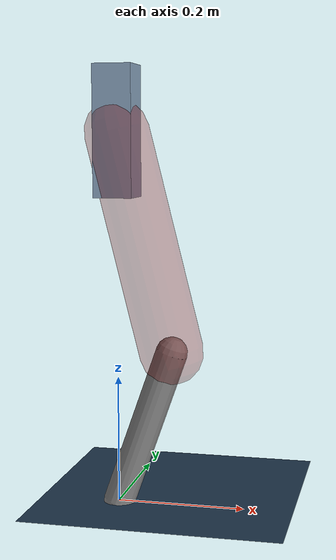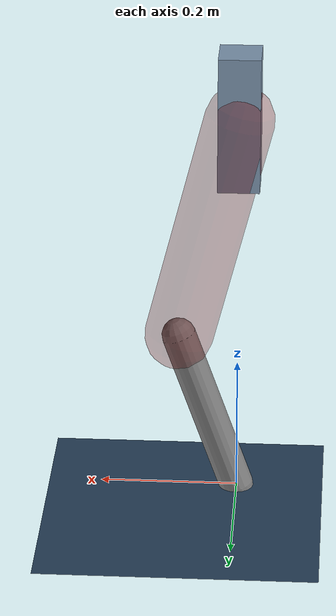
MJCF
<mujoco model="Hopper2D">
	<compiler inertiafromgeom="true" angle="radian" />
	<option timestep="0.001" integrator="implicit" cone="elliptic" solver="Newton" tolerance="1e-10" />

	<default>
		<geom contype="1" conaffinity="1" condim="3" friction="2 0.005 0.0001" solref="0.005 1" />
		<joint limited="true" damping="0.1" />
	</default>

	<asset>
		<texture name="skybox" type="skybox" builtin="gradient" rgb1=".4 .6 .8" rgb2="0 0 0" width="800" height="800" />
		<texture name="grid" type="2d" builtin="checker" rgb1=".1 .2 .3" rgb2=".2 .3 .4" width="300" height="300" mark="edge" markrgb=".2 .3 .4" />
		<material name="ground" texture="grid" texrepeat="1 1" texuniform="true" reflectance="0.1" />
		<material name="leg" rgba="0.5 0.6 0.7 1" />
	</asset>

	<worldbody>

		<geom name="floor" type="plane" size="5 5 0.25" material="ground" />

		<light directional="false" diffuse="0.8 0.8 0.8" specular="0.3 0.3 0.3" pos="0 0 2" dir="0 0 -1" />
		<light mode="targetbodycom" target="base" directional="false" diffuse="0.8 0.8 0.8" specular="0.3 0.3 0.3" pos="0 0 2" dir="0 0 -1" />

		<camera name="fixed" pos="0 -2 1" xyaxes="1 0 0 0 0 1" />
		<camera name="tracking" mode="trackcom" pos="0 -3 1" />

		<body name="root" pos="0 0 0.5823046816808355">
			<joint name="slide_x" type="slide" axis="1 0 0" range="-100 100" />
			<joint name="slide_z" type="slide" axis="0 0 1" range="0 10" />

			<body name="base" pos="0 0 0">
				<geom name="torso" type="box" size="0.03 0.03 0.1" mass="2.9699999999999998" material="leg" />

				<body name="link1" pos="0 0 0" euler="0 1.3232553049241031 0">
					<joint type="hinge" axis="0 -1 0" pos="0 0 0" name="hinge1" limited="true" range="-3.14 3.14" stiffness="0" damping="0.1" />
					<geom name="thigh" type="capsule" fromto="0 0 0 0.3496814258098309 0 0" size="0.05" rgba="0.5 0 0 0.3" mass="1.1258079922675266" />

					<body name="link2" pos="0.3496814258098309 0 0" euler="0 0.5861566908692833 0">
						<joint type="hinge" axis="0 -1 0" pos="0 0 0" name="hinge2" limited="true" range="-3.14 3.14" stiffness="0" damping="0.1" />
						<geom name="shank" type="capsule" fromto="0 0 0 0.2579286680469308 0 0" size="0.025" mass="0.44904293443754467" />

					</body>
				</body>
			</body>
		</body>
	</worldbody>

	<actuator>
		<motor name="torque1" joint="hinge1" ctrlrange="-103.87714493325777 103.87714493325777" ctrllimited="true" gear="1" />
		<motor name="torque2" joint="hinge2" ctrlrange="-134.78011317479917 134.78011317479917" ctrllimited="true" gear="1" />
	</actuator>
</mujoco>
